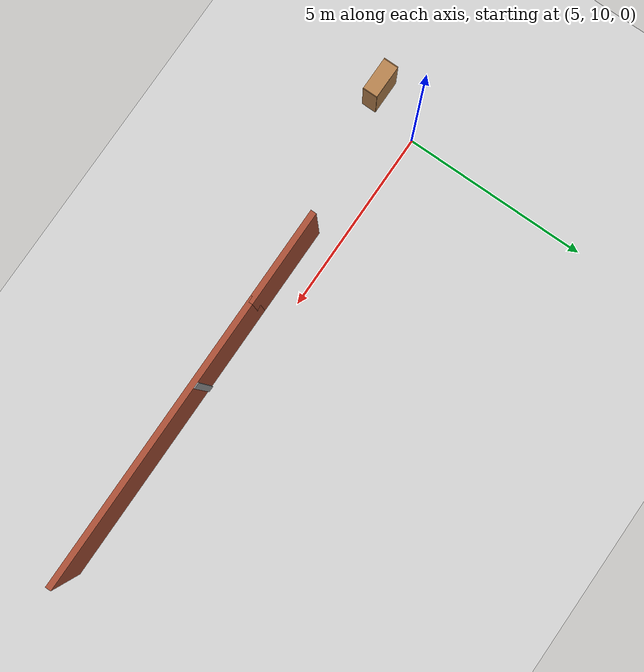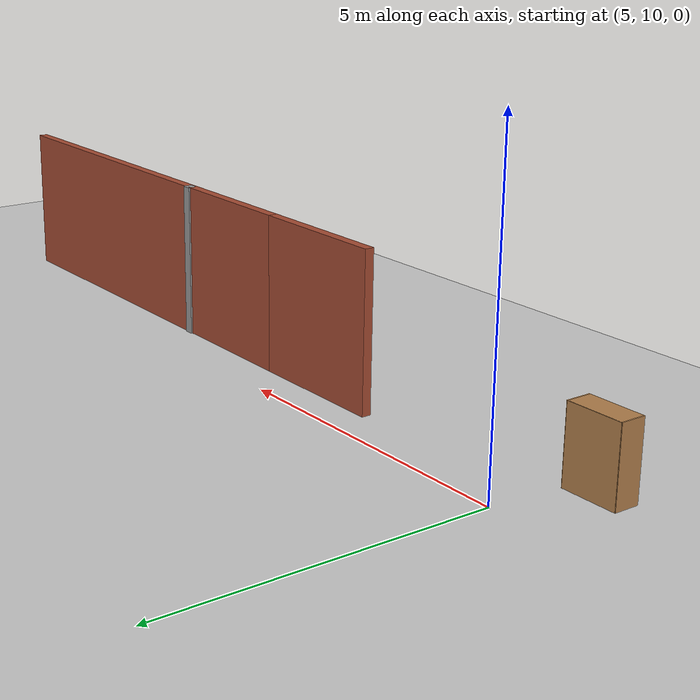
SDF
<sdf version="1.6">
 <world name="default">
  <model name="ground_plane">
   <static>1</static>
   <link name="link">
    <collision name="collision">
     <geometry><plane><normal>0 0 1</normal><size>100 100</size></plane></geometry>
     <surface>
      <contact><collide_bitmask>65535</collide_bitmask></contact>
      <friction><ode><mu>100</mu><mu2>50</mu2></ode></friction>
     </surface>
    </collision>
    <visual name="visual">
     <cast_shadows>0</cast_shadows>
     <geometry><plane><normal>0 0 1</normal><size>100 100</size></plane></geometry>
     <material>
      <script><uri>file://media/materials/scripts/gazebo.material</uri><name>Gazebo/Grey</name></script>
     </material>
    </visual>
   </link>
  </model>
  <model name="office">
   <pose>2.35048 -0.469027 0 0 -0 0</pose>
   <link name="Wall_15">
    <collision name="Wall_15_Collision">
     <geometry><box><size>2.5 0.15 2.5</size></box></geometry>
     <pose>0 0 1.25 0 -0 0</pose>
    </collision>
    <visual name="Wall_15_Visual">
     <pose>0 0 1.25 0 -0 0</pose>
     <geometry><box><size>2.5 0.15 2.5</size></box></geometry>
     <material>
      <script><uri>file://media/materials/scripts/gazebo.material</uri><name>Gazebo/Bricks</name></script>
      <ambient>1 1 1 1</ambient>
     </material>
     <meta><layer>0</layer></meta>
    </visual>
    <pose>7.14832 9.82933 0 0 -0 0</pose>
   </link>
   <link name="Wall_150">
    <collision name="Wall_150_Collision">
     <geometry><box><size>7.75 0.15 2.5</size></box></geometry>
     <pose>0 0 1.25 0 -0 0</pose>
    </collision>
    <visual name="Wall_150_Visual">
     <pose>0 0 1.25 0 -0 0</pose>
     <geometry><box><size>7.75 0.15 2.5</size></box></geometry>
     <material>
      <script><uri>file://media/materials/scripts/gazebo.material</uri><name>Gazebo/Bricks</name></script>
      <ambient>1 1 1 1</ambient>
     </material>
     <meta><layer>0</layer></meta>
    </visual>
    <pose>12.1233 9.82933 0 0 -0 0</pose>
   </link>
   <link name="Wall_38">
    <collision name="Wall_38_Collision">
     <geometry><box><size>0.16 0.15 2.5</size></box></geometry>
     <pose>0 0 1.25 0 -0 0</pose>
    </collision>
    <visual name="Wall_38_Visual">
     <pose>0 0 1.25 0 -0 0</pose>
     <geometry><box><size>0.16 0.15 2.5</size></box></geometry>
     <material>
      <script><uri>file://media/materials/scripts/gazebo.material</uri><name>Gazebo/Grey</name></script>
      <ambient>0 0 0 0</ambient>
     </material>
     <meta><layer>0</layer></meta>
    </visual>
    <pose>10.5783 9.85593 0 0 -0 0</pose>
   </link>
   <static>1</static>
  </model>
  <model name="bookshelf">
   <static>1</static>
   <link name="link">
    <inertial><mass>1</mass></inertial>
    <collision name="back">
     <pose>0 0.005 0.6 0 -0 0</pose>
     <geometry><box><size>0.9 0.01 1.2</size></box></geometry>
    </collision>
    <visual name="visual1">
     <pose>0 0.005 0.6 0 -0 0</pose>
     <geometry><box><size>0.9 0.01 1.2</size></box></geometry>
     <material>
      <script><uri>file://media/materials/scripts/gazebo.material</uri><name>Gazebo/Wood</name></script>
     </material>
    </visual>
    <collision name="left_side">
     <pose>0.45 -0.195 0.6 0 -0 0</pose>
     <geometry><box><size>0.02 0.4 1.2</size></box></geometry>
    </collision>
    <visual name="visual2">
     <pose>0.45 -0.195 0.6 0 -0 0</pose>
     <geometry><box><size>0.02 0.4 1.2</size></box></geometry>
     <material>
      <script><uri>file://media/materials/scripts/gazebo.material</uri><name>Gazebo/Wood</name></script>
     </material>
    </visual>
    <collision name="right_side">
     <pose>-0.45 -0.195 0.6 0 -0 0</pose>
     <geometry><box><size>0.02 0.4 1.2</size></box></geometry>
    </collision>
    <visual name="visual3">
     <pose>-0.45 -0.195 0.6 0 -0 0</pose>
     <geometry><box><size>0.02 0.4 1.2</size></box></geometry>
     <material>
      <script><uri>file://media/materials/scripts/gazebo.material</uri><name>Gazebo/Wood</name></script>
     </material>
    </visual>
    <collision name="bottom">
     <pose>0 -0.195 0.03 0 -0 0</pose>
     <geometry><box><size>0.88 0.4 0.06</size></box></geometry>
    </collision>
    <visual name="visual4">
     <pose>0 -0.195 0.03 0 -0 0</pose>
     <geometry><box><size>0.88 0.4 0.06</size></box></geometry>
     <material>
      <script><uri>file://media/materials/scripts/gazebo.material</uri><name>Gazebo/Wood</name></script>
     </material>
    </visual>
    <collision name="top">
     <pose>0 -0.195 1.19 0 -0 0</pose>
     <geometry><box><size>0.88 0.4 0.02</size></box></geometry>
    </collision>
    <visual name="visual5">
     <pose>0 -0.195 1.19 0 -0 0</pose>
     <geometry><box><size>0.88 0.4 0.02</size></box></geometry>
     <material>
      <script><uri>file://media/materials/scripts/gazebo.material</uri><name>Gazebo/Wood</name></script>
     </material>
    </visual>
    <collision name="low_shelf">
     <pose>0 -0.195 0.43 0 -0 0</pose>
     <geometry><box><size>0.88 0.4 0.02</size></box></geometry>
    </collision>
    <visual name="visual6">
     <pose>0 -0.195 0.43 0 -0 0</pose>
     <geometry><box><size>0.88 0.4 0.02</size></box></geometry>
     <material>
      <script><uri>file://media/materials/scripts/gazebo.material</uri><name>Gazebo/Wood</name></script>
     </material>
    </visual>
    <collision name="high_shelf">
     <pose>0 -0.195 0.8 0 -0 0</pose>
     <geometry><box><size>0.88 0.4 0.02</size></box></geometry>
    </collision>
    <visual name="visual7">
     <pose>0 -0.195 0.8 0 -0 0</pose>
     <geometry><box><size>0.88 0.4 0.02</size></box></geometry>
     <material>
      <script><uri>file://media/materials/scripts/gazebo.material</uri><name>Gazebo/Wood</name></script>
     </material>
    </visual>
   </link>
   <pose>4.45188 8.8263 0 0 -0 0</pose>
  </model>
 </world>
</sdf>
